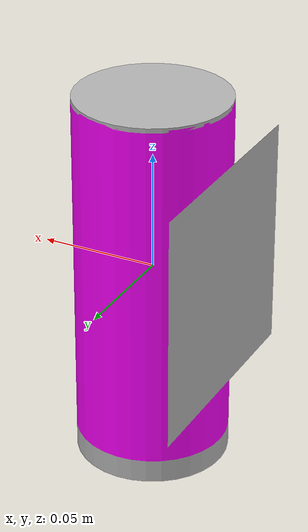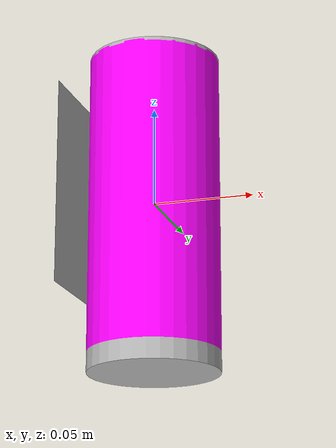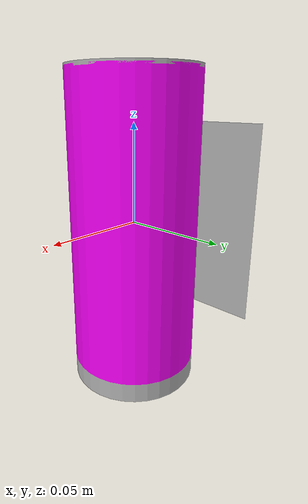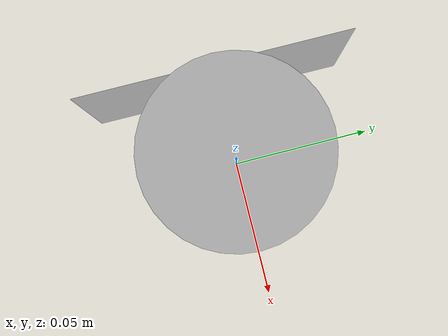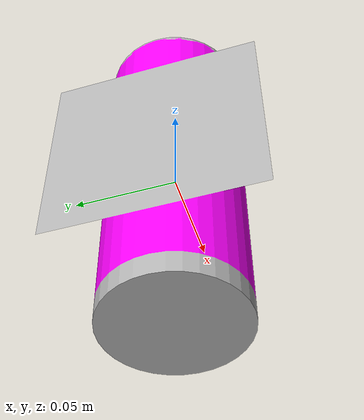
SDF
<?xml version='1.0'?>
<sdf version="1.4">
<model name="can_id1">
  <pose>0 0 0 0 0 3.14</pose>
    <link name="link">
      <inertial>
        <mass>0.02</mass>
        <inertia>
          <ixx>5.345e-5</ixx>
          <ixy>0.0</ixy>
          <ixz>0.0</ixz>
          <iyy>5.345e-5</iyy>
          <iyz>0.0</iyz>
          <izz>1.056e-5</izz>
        </inertia>
      </inertial>
      <collision name="collision">
        <geometry>
          <mesh>
            <uri>model://can_id3/meshes/can_id3.dae</uri>
          </mesh>
        </geometry>
      </collision>
      <visual name="visual">
        <geometry>
          <mesh>
          <uri>model://can_id3/meshes/can_id3.dae</uri>
          </mesh>
        </geometry>
      </visual>
    </link>
  </model>
</sdf>
